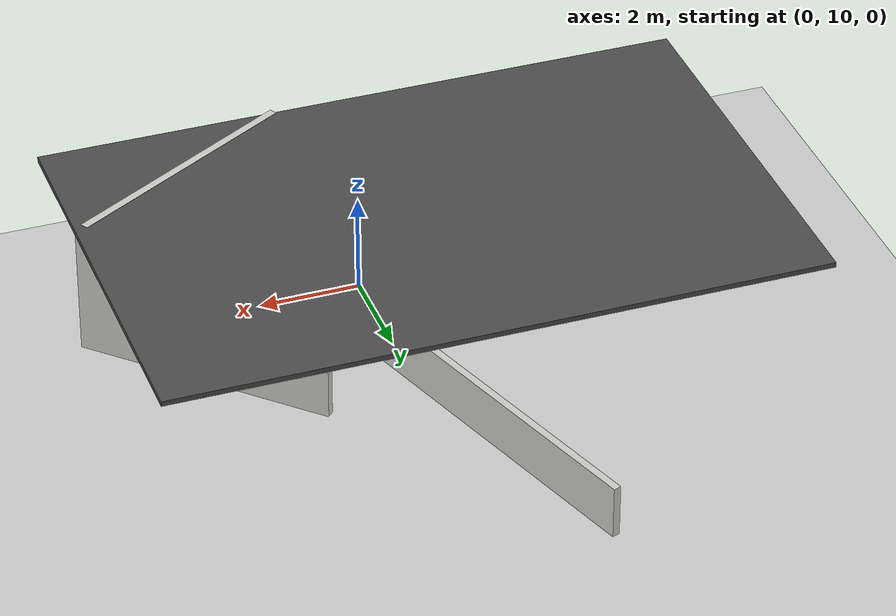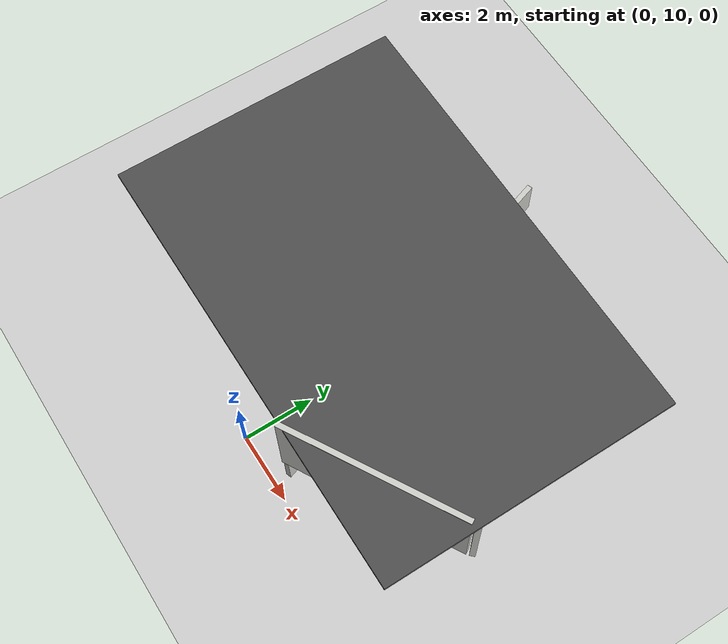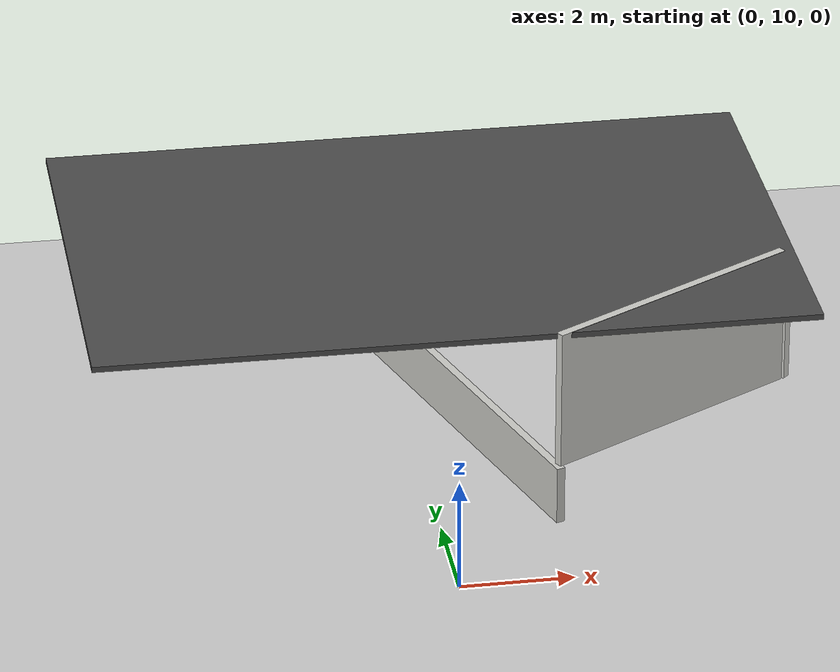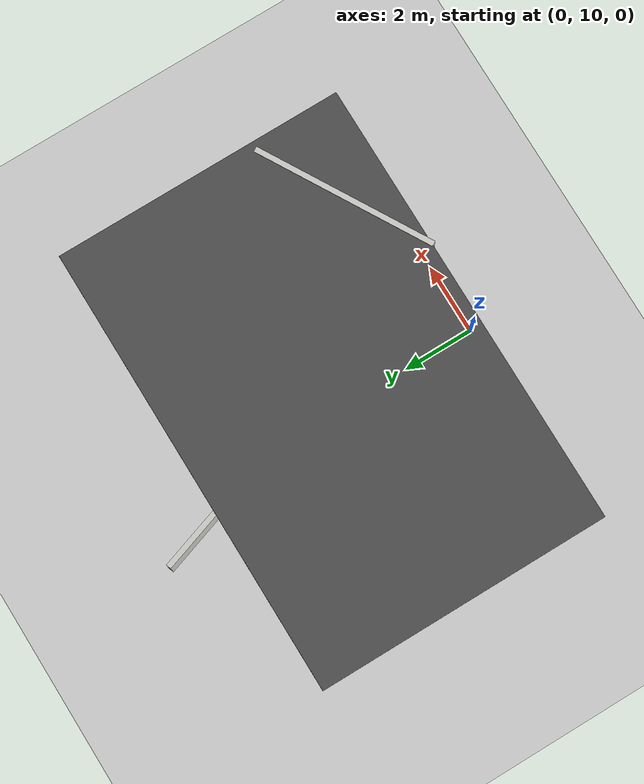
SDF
<sdf version="1.6">
 <world name="default">
  <model name="ground_plane">
   <static>1</static>
   <link name="link">
    <collision name="collision">
     <geometry><plane><normal>0 0 1</normal><size>100 100</size></plane></geometry>
     <surface><friction><ode><mu>100</mu><mu2>50</mu2></ode></friction></surface>
    </collision>
    <visual name="visual">
     <cast_shadows>0</cast_shadows>
     <geometry><plane><normal>0 0 1</normal><size>100 100</size></plane></geometry>
     <material>
      <script><uri>file://media/materials/scripts/gazebo.material</uri><name>Gazebo/Grey</name></script>
     </material>
    </visual>
   </link>
  </model>
  <model name="Untitled_1_0_clone_clone_clone">
   <pose>3.06138 12.9911 2.05939 0 -0 0.522456</pose>
   <link name="Wall_16">
    <collision name="Wall_16_Collision">
     <geometry><box><size>5 0.15 2.5</size></box></geometry>
     <pose>0 0 1.25 0 -0 0</pose>
    </collision>
    <visual name="Wall_16_Visual">
     <pose>0 0 1.25 0 -0 0</pose>
     <geometry><box><size>5 0.15 2.5</size></box></geometry>
     <material>
      <script><uri>file://media/materials/scripts/gazebo.material</uri><name>Gazebo/CeilingTiled</name></script>
      <ambient>1 1 1 1</ambient>
     </material>
     <meta><layer>0</layer></meta>
    </visual>
    <pose>0 -1.66958 0 0 -0 0</pose>
   </link>
   <static>1</static>
  </model>
  <model name="Untitled_1_0">
   <link name="Wall_16">
    <pose>3.00166 1.24778 0.309228 0 -0 0.121595</pose>
    <inertial>
     <inertia><ixx>0</ixx><ixy>0</ixy><ixz>0</ixz><iyy>0</iyy><iyz>0</iyz><izz>0</izz></inertia>
     <mass>0</mass>
    </inertial>
    <visual name="Wall_16_Visual">
     <pose>0 0 1.25 0 -0 0</pose>
     <geometry><box><size>10.144 0.15 1.04032</size></box></geometry>
     <material>
      <script><uri>file://media/materials/scripts/gazebo.material</uri><name>Gazebo/CeilingTiled</name></script>
      <ambient>1 1 1 1</ambient>
      <shader type="pixel"/>
     </material>
     <meta><layer>0</layer></meta>
    </visual>
    <collision name="Wall_16_Collision">
     <pose>0 0 1.25 0 -0 0</pose>
     <geometry><box><size>10.144 0.15 1.04032</size></box></geometry>
     <surface>
      <friction>
       <ode><mu>1</mu><mu2>1</mu2><fdir1>0 0 0</fdir1><slip1>0</slip1><slip2>0</slip2></ode>
       <torsional>
        <coefficient>1</coefficient>
        <patch_radius>0</patch_radius>
        <surface_radius>0</surface_radius>
        <use_patch_radius>1</use_patch_radius>
        <ode><slip>0</slip></ode>
       </torsional>
      </friction>
      <bounce><restitution_coefficient>0</restitution_coefficient><threshold>1e+06</threshold></bounce>
      <contact>
       <collide_without_contact>0</collide_without_contact>
       <collide_without_contact_bitmask>1</collide_without_contact_bitmask>
       <collide_bitmask>1</collide_bitmask>
       <ode>
        <soft_cfm>0</soft_cfm>
        <soft_erp>0.2</soft_erp>
        <kp>1e+13</kp>
        <kd>1</kd>
        <max_vel>0.01</max_vel>
        <min_depth>0</min_depth>
       </ode>
       <bullet>
        <split_impulse>1</split_impulse>
        <split_impulse_penetration_threshold>-0.01</split_impulse_penetration_threshold>
        <soft_cfm>0</soft_cfm>
        <soft_erp>0.2</soft_erp>
        <kp>1e+13</kp>
        <kd>1</kd>
       </bullet>
      </contact>
     </surface>
    </collision>
   </link>
   <static>1</static>
   <pose>2.00853 12.4355 -0.110255 0 -0 1.7692</pose>
  </model>
  <model name="Untitled_1_0_clone_clone_0_clone">
   <pose>3.25433 13.4028 2.03023 0 -0 2.36363</pose>
   <link name="Wall_16">
    <collision name="Wall_16_Collision">
     <geometry><box><size>5 0.15 2.5</size></box></geometry>
     <pose>0 0 1.25 0 -0 0</pose>
    </collision>
    <visual name="Wall_16_Visual">
     <pose>0 0 1.25 0 -0 0</pose>
     <geometry><box><size>5 0.15 2.5</size></box></geometry>
     <material>
      <script><uri>file://media/materials/scripts/gazebo.material</uri><name>Gazebo/CeilingTiled</name></script>
      <ambient>1 1 1 1</ambient>
     </material>
     <meta><layer>0</layer></meta>
    </visual>
    <pose>0 -1.66958 0 0 -0 0</pose>
   </link>
   <static>1</static>
  </model>
  <model name="asphalt_plane_3">
   <link name="link">
    <pose>-2.49733 1.83123 0 0 -0 0</pose>
    <inertial>
     <inertia><ixx>0</ixx><ixy>0</ixy><ixz>0</ixz><iyy>0</iyy><iyz>0</iyz><izz>0</izz></inertia>
     <mass>0</mass>
    </inertial>
    <visual name="visual">
     <cast_shadows>0</cast_shadows>
     <geometry><box><size>12.3736 7.95029 0.1</size></box></geometry>
     <material>
      <script>
       <uri>model://asphalt_plane/materials/scripts</uri>
       <uri>model://asphalt_plane/materials/textures</uri>
       <name>vrc/asphalt</name>
      </script>
      <shader type="pixel"/>
     </material>
    </visual>
    <collision name="collision">
     <geometry><box><size>12.3736 7.95029 0.1</size></box></geometry>
     <surface>
      <friction>
       <ode><mu>1</mu><mu2>1</mu2><fdir1>0 0 0</fdir1><slip1>0</slip1><slip2>0</slip2></ode>
       <torsional>
        <coefficient>1</coefficient>
        <patch_radius>0</patch_radius>
        <surface_radius>0</surface_radius>
        <use_patch_radius>1</use_patch_radius>
        <ode><slip>0</slip></ode>
       </torsional>
      </friction>
      <bounce><restitution_coefficient>0</restitution_coefficient><threshold>1e+06</threshold></bounce>
      <contact>
       <collide_without_contact>0</collide_without_contact>
       <collide_without_contact_bitmask>1</collide_without_contact_bitmask>
       <collide_bitmask>1</collide_bitmask>
       <ode>
        <soft_cfm>0</soft_cfm>
        <soft_erp>0.2</soft_erp>
        <kp>1e+13</kp>
        <kd>1</kd>
        <max_vel>0.01</max_vel>
        <min_depth>0</min_depth>
       </ode>
       <bullet>
        <split_impulse>1</split_impulse>
        <split_impulse_penetration_threshold>-0.01</split_impulse_penetration_threshold>
        <soft_cfm>0</soft_cfm>
        <soft_erp>0.2</soft_erp>
        <kp>1e+13</kp>
        <kd>1</kd>
       </bullet>
      </contact>
     </surface>
    </collision>
   </link>
   <static>1</static>
   <pose>2.56464 12.4781 4.50291 0 -0 0</pose>
  </model>
 </world>
</sdf>
